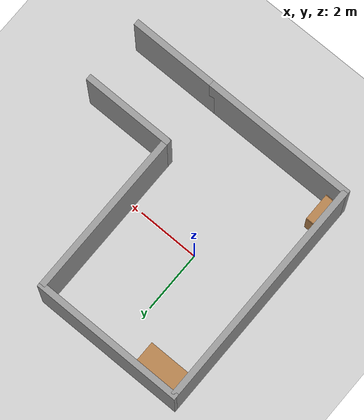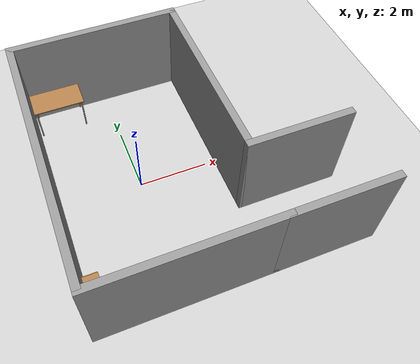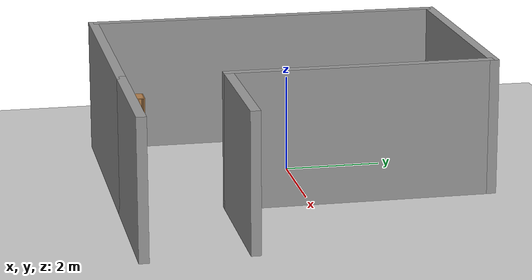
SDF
<sdf version="1.6">
 <world name="default">
  <light name="sun" type="directional">
   <pose>0 0 15 0 -0 0</pose>
   <diffuse>0.8 0.8 0.8 1</diffuse>
   <specular>0.2 0.2 0.2 1</specular>
   <attenuation>
    <range>1000</range>
    <constant>0.9</constant>
    <linear>0.01</linear>
    <quadratic>0.001</quadratic>
   </attenuation>
   <direction>-0.5 0.1 -0.9</direction>
  </light>
  <model name="ground_plane">
   <static>1</static>
   <link name="link">
    <collision name="collision">
     <geometry><plane><normal>0 0 1</normal><size>100 100</size></plane></geometry>
     <surface><friction><ode><mu>100</mu><mu2>50</mu2></ode></friction></surface>
    </collision>
    <visual name="visual">
     <transparency>1</transparency>
     <cast_shadows>0</cast_shadows>
     <geometry><plane><normal>0 0 1</normal><size>100 100</size></plane></geometry>
     <material>
      <script><uri>file://media/materials/scripts/gazebo.material</uri><name>Gazebo/Grey</name></script>
     </material>
    </visual>
   </link>
  </model>
  <gravity>0 0 -9.8</gravity>
  <magnetic_field>6e-06 2.3e-05 -4.2e-05</magnetic_field>
  <atmosphere type="adiabatic"/>
  <physics name="default_physics" default="0" type="ode">
   <max_step_size>0.001</max_step_size>
   <real_time_factor>1</real_time_factor>
   <real_time_update_rate>1000</real_time_update_rate>
  </physics>
  <scene><ambient>0.4 0.4 0.4 1</ambient><background>0.7 0.7 0.7 1</background><shadows>1</shadows></scene>
  <spherical_coordinates>
   <surface_model>EARTH_WGS84</surface_model>
   <latitude_deg>0</latitude_deg>
   <longitude_deg>0</longitude_deg>
   <elevation>0</elevation>
   <heading_deg>0</heading_deg>
  </spherical_coordinates>
  <model name="grey_wall_5">
   <link name="link">
    <pose>0 0 1.4 0 -0 0</pose>
    <inertial>
     <mass>1</mass>
     <inertia><ixx>1</ixx><ixy>0</ixy><ixz>0</ixz><iyy>1</iyy><iyz>0</iyz><izz>1</izz></inertia>
    </inertial>
    <visual name="visual">
     <cast_shadows>0</cast_shadows>
     <geometry><box><size>5 0.2 2.8</size></box></geometry>
     <material>
      <script>
       <uri>model://grey_wall/materials/scripts</uri>
       <uri>model://grey_wall/materials/textures</uri>
       <name>vrc/grey_wall</name>
      </script>
      <shader type="pixel"><normal_map>__default__</normal_map></shader>
      <ambient>1 1 1 1</ambient>
      <diffuse>1 1 1 1</diffuse>
      <specular>0 0 0 1</specular>
      <emissive>0 0 0 1</emissive>
     </material>
    </visual>
    <collision name="collision">
     <geometry><box><size>5 0.2 2.8</size></box></geometry>
     <surface>
      <friction>
       <ode><mu>1</mu><mu2>1</mu2><fdir1>0 0 0</fdir1><slip1>0</slip1><slip2>0</slip2></ode>
       <torsional>
        <coefficient>1</coefficient>
        <patch_radius>0</patch_radius>
        <surface_radius>0</surface_radius>
        <use_patch_radius>1</use_patch_radius>
        <ode><slip>0</slip></ode>
       </torsional>
      </friction>
      <bounce><restitution_coefficient>0</restitution_coefficient><threshold>1e+06</threshold></bounce>
      <contact>
       <collide_without_contact>0</collide_without_contact>
       <collide_without_contact_bitmask>1</collide_without_contact_bitmask>
       <collide_bitmask>1</collide_bitmask>
       <ode>
        <soft_cfm>0</soft_cfm>
        <soft_erp>0.2</soft_erp>
        <kp>1e+13</kp>
        <kd>1</kd>
        <max_vel>0.01</max_vel>
        <min_depth>0</min_depth>
       </ode>
       <bullet>
        <split_impulse>1</split_impulse>
        <split_impulse_penetration_threshold>-0.01</split_impulse_penetration_threshold>
        <soft_cfm>0</soft_cfm>
        <soft_erp>0.2</soft_erp>
        <kp>1e+13</kp>
        <kd>1</kd>
       </bullet>
      </contact>
     </surface>
    </collision>
   </link>
   <static>1</static>
   <pose>0 3.75 0 0 -0 0</pose>
  </model>
  <model name="grey_wall_5_clone">
   <link name="link">
    <pose>0 0 1.4 0 -0 0</pose>
    <inertial>
     <mass>1</mass>
     <inertia><ixx>1</ixx><ixy>0</ixy><ixz>0</ixz><iyy>1</iyy><iyz>0</iyz><izz>1</izz></inertia>
    </inertial>
    <visual name="visual">
     <cast_shadows>0</cast_shadows>
     <geometry><box><size>5 0.2 2.8</size></box></geometry>
     <material>
      <script>
       <uri>model://grey_wall/materials/scripts</uri>
       <uri>model://grey_wall/materials/textures</uri>
       <name>vrc/grey_wall</name>
      </script>
      <shader type="pixel"><normal_map>__default__</normal_map></shader>
      <ambient>1 1 1 1</ambient>
      <diffuse>1 1 1 1</diffuse>
      <specular>0 0 0 1</specular>
      <emissive>0 0 0 1</emissive>
     </material>
    </visual>
    <collision name="collision">
     <geometry><box><size>5 0.2 2.8</size></box></geometry>
     <surface>
      <friction>
       <ode><mu>1</mu><mu2>1</mu2><fdir1>0 0 0</fdir1><slip1>0</slip1><slip2>0</slip2></ode>
       <torsional>
        <coefficient>1</coefficient>
        <patch_radius>0</patch_radius>
        <surface_radius>0</surface_radius>
        <use_patch_radius>1</use_patch_radius>
        <ode><slip>0</slip></ode>
       </torsional>
      </friction>
      <bounce><restitution_coefficient>0</restitution_coefficient><threshold>1e+06</threshold></bounce>
      <contact>
       <collide_without_contact>0</collide_without_contact>
       <collide_without_contact_bitmask>1</collide_without_contact_bitmask>
       <collide_bitmask>1</collide_bitmask>
       <ode>
        <soft_cfm>0</soft_cfm>
        <soft_erp>0.2</soft_erp>
        <kp>1e+13</kp>
        <kd>1</kd>
        <max_vel>0.01</max_vel>
        <min_depth>0</min_depth>
       </ode>
       <bullet>
        <split_impulse>1</split_impulse>
        <split_impulse_penetration_threshold>-0.01</split_impulse_penetration_threshold>
        <soft_cfm>0</soft_cfm>
        <soft_erp>0.2</soft_erp>
        <kp>1e+13</kp>
        <kd>1</kd>
       </bullet>
      </contact>
     </surface>
    </collision>
   </link>
   <static>1</static>
   <pose>0 -3.75 0 0 -0 0</pose>
  </model>
  <model name="grey_wall">
   <static>1</static>
   <link name="link">
    <pose>0 0 1.4 0 -0 0</pose>
    <collision name="collision"><geometry><box><size>7.5 0.2 2.8</size></box></geometry></collision>
    <visual name="visual">
     <cast_shadows>0</cast_shadows>
     <geometry><box><size>7.5 0.2 2.8</size></box></geometry>
     <material>
      <script>
       <uri>model://grey_wall/materials/scripts</uri>
       <uri>model://grey_wall/materials/textures</uri>
       <name>vrc/grey_wall</name>
      </script>
     </material>
    </visual>
   </link>
   <pose>-2.4 0 0 0 -0 1.5708</pose>
  </model>
  <model name="grey_wall_5-5">
   <link name="link">
    <pose>0 0 1.4 0 -0 0</pose>
    <inertial>
     <mass>1</mass>
     <inertia><ixx>1</ixx><ixy>0</ixy><ixz>0</ixz><iyy>1</iyy><iyz>0</iyz><izz>1</izz></inertia>
    </inertial>
    <visual name="visual">
     <cast_shadows>0</cast_shadows>
     <geometry><box><size>5.5 0.2 2.8</size></box></geometry>
     <material>
      <script>
       <uri>model://grey_wall/materials/scripts</uri>
       <uri>model://grey_wall/materials/textures</uri>
       <name>vrc/grey_wall</name>
      </script>
      <shader type="pixel"><normal_map>__default__</normal_map></shader>
      <ambient>1 1 1 1</ambient>
      <diffuse>1 1 1 1</diffuse>
      <specular>0 0 0 1</specular>
      <emissive>0 0 0 1</emissive>
     </material>
    </visual>
    <collision name="collision">
     <geometry><box><size>5.5 0.2 2.8</size></box></geometry>
     <surface>
      <friction>
       <ode><mu>1</mu><mu2>1</mu2><fdir1>0 0 0</fdir1><slip1>0</slip1><slip2>0</slip2></ode>
       <torsional>
        <coefficient>1</coefficient>
        <patch_radius>0</patch_radius>
        <surface_radius>0</surface_radius>
        <use_patch_radius>1</use_patch_radius>
        <ode><slip>0</slip></ode>
       </torsional>
      </friction>
      <bounce><restitution_coefficient>0</restitution_coefficient><threshold>1e+06</threshold></bounce>
      <contact>
       <collide_without_contact>0</collide_without_contact>
       <collide_without_contact_bitmask>1</collide_without_contact_bitmask>
       <collide_bitmask>1</collide_bitmask>
       <ode>
        <soft_cfm>0</soft_cfm>
        <soft_erp>0.2</soft_erp>
        <kp>1e+13</kp>
        <kd>1</kd>
        <max_vel>0.01</max_vel>
        <min_depth>0</min_depth>
       </ode>
       <bullet>
        <split_impulse>1</split_impulse>
        <split_impulse_penetration_threshold>-0.01</split_impulse_penetration_threshold>
        <soft_cfm>0</soft_cfm>
        <soft_erp>0.2</soft_erp>
        <kp>1e+13</kp>
        <kd>1</kd>
       </bullet>
      </contact>
     </surface>
    </collision>
   </link>
   <static>1</static>
   <pose>2.4 1 0 0 -0 1.5708</pose>
  </model>
  <model name="grey_wall_3m">
   <link name="link">
    <pose>0 0 1.4 0 -0 0</pose>
    <inertial>
     <mass>1</mass>
     <inertia><ixx>1</ixx><ixy>0</ixy><ixz>0</ixz><iyy>1</iyy><iyz>0</iyz><izz>1</izz></inertia>
    </inertial>
    <visual name="visual">
     <cast_shadows>0</cast_shadows>
     <geometry><box><size>3 0.2 2.8</size></box></geometry>
     <material>
      <script>
       <uri>model://grey_wall/materials/scripts</uri>
       <uri>model://grey_wall/materials/textures</uri>
       <name>vrc/grey_wall</name>
      </script>
      <shader type="pixel"><normal_map>__default__</normal_map></shader>
      <ambient>1 1 1 1</ambient>
      <diffuse>1 1 1 1</diffuse>
      <specular>0 0 0 1</specular>
      <emissive>0 0 0 1</emissive>
     </material>
    </visual>
    <collision name="collision">
     <geometry><box><size>3 0.2 2.8</size></box></geometry>
     <surface>
      <friction>
       <ode><mu>1</mu><mu2>1</mu2><fdir1>0 0 0</fdir1><slip1>0</slip1><slip2>0</slip2></ode>
       <torsional>
        <coefficient>1</coefficient>
        <patch_radius>0</patch_radius>
        <surface_radius>0</surface_radius>
        <use_patch_radius>1</use_patch_radius>
        <ode><slip>0</slip></ode>
       </torsional>
      </friction>
      <bounce><restitution_coefficient>0</restitution_coefficient><threshold>1e+06</threshold></bounce>
      <contact>
       <collide_without_contact>0</collide_without_contact>
       <collide_without_contact_bitmask>1</collide_without_contact_bitmask>
       <collide_bitmask>1</collide_bitmask>
       <ode>
        <soft_cfm>0</soft_cfm>
        <soft_erp>0.2</soft_erp>
        <kp>1e+13</kp>
        <kd>1</kd>
        <max_vel>0.01</max_vel>
        <min_depth>0</min_depth>
       </ode>
       <bullet>
        <split_impulse>1</split_impulse>
        <split_impulse_penetration_threshold>-0.01</split_impulse_penetration_threshold>
        <soft_cfm>0</soft_cfm>
        <soft_erp>0.2</soft_erp>
        <kp>1e+13</kp>
        <kd>1</kd>
       </bullet>
      </contact>
     </surface>
    </collision>
   </link>
   <static>1</static>
   <pose>3.8 -3.75 0 0 -0 0</pose>
  </model>
  <model name="grey_wall_3m_clone">
   <link name="link">
    <pose>0 0 1.4 0 -0 0</pose>
    <inertial>
     <mass>1</mass>
     <inertia><ixx>1</ixx><ixy>0</ixy><ixz>0</ixz><iyy>1</iyy><iyz>0</iyz><izz>1</izz></inertia>
    </inertial>
    <visual name="visual">
     <cast_shadows>0</cast_shadows>
     <geometry><box><size>3 0.2 2.8</size></box></geometry>
     <material>
      <script>
       <uri>model://grey_wall/materials/scripts</uri>
       <uri>model://grey_wall/materials/textures</uri>
       <name>vrc/grey_wall</name>
      </script>
      <shader type="pixel"><normal_map>__default__</normal_map></shader>
      <ambient>1 1 1 1</ambient>
      <diffuse>1 1 1 1</diffuse>
      <specular>0 0 0 1</specular>
      <emissive>0 0 0 1</emissive>
     </material>
    </visual>
    <collision name="collision">
     <geometry><box><size>3 0.2 2.8</size></box></geometry>
     <surface>
      <friction>
       <ode><mu>1</mu><mu2>1</mu2><fdir1>0 0 0</fdir1><slip1>0</slip1><slip2>0</slip2></ode>
       <torsional>
        <coefficient>1</coefficient>
        <patch_radius>0</patch_radius>
        <surface_radius>0</surface_radius>
        <use_patch_radius>1</use_patch_radius>
        <ode><slip>0</slip></ode>
       </torsional>
      </friction>
      <bounce><restitution_coefficient>0</restitution_coefficient><threshold>1e+06</threshold></bounce>
      <contact>
       <collide_without_contact>0</collide_without_contact>
       <collide_without_contact_bitmask>1</collide_without_contact_bitmask>
       <collide_bitmask>1</collide_bitmask>
       <ode>
        <soft_cfm>0</soft_cfm>
        <soft_erp>0.2</soft_erp>
        <kp>1e+13</kp>
        <kd>1</kd>
        <max_vel>0.01</max_vel>
        <min_depth>0</min_depth>
       </ode>
       <bullet>
        <split_impulse>1</split_impulse>
        <split_impulse_penetration_threshold>-0.01</split_impulse_penetration_threshold>
        <soft_cfm>0</soft_cfm>
        <soft_erp>0.2</soft_erp>
        <kp>1e+13</kp>
        <kd>1</kd>
       </bullet>
      </contact>
     </surface>
    </collision>
   </link>
   <static>1</static>
   <pose>3.8 -1.65 0 0 -0 0</pose>
  </model>
  <model name="table">
   <static>1</static>
   <link name="link">
    <collision name="surface">
     <pose>0 0 1 0 -0 0</pose>
     <geometry><box><size>1.5 0.8 0.03</size></box></geometry>
     <surface><friction><ode><mu>0.6</mu><mu2>0.6</mu2></ode></friction></surface>
    </collision>
    <visual name="visual1">
     <pose>0 0 1 0 -0 0</pose>
     <geometry><box><size>1.5 0.8 0.03</size></box></geometry>
     <material>
      <script><uri>file://media/materials/scripts/gazebo.material</uri><name>Gazebo/Wood</name></script>
     </material>
    </visual>
    <collision name="front_left_leg">
     <pose>0.68 0.38 0.5 0 -0 0</pose>
     <geometry><cylinder><radius>0.02</radius><length>1</length></cylinder></geometry>
    </collision>
    <visual name="front_left_leg">
     <pose>0.68 0.38 0.5 0 -0 0</pose>
     <geometry><cylinder><radius>0.02</radius><length>1</length></cylinder></geometry>
     <material>
      <script><uri>file://media/materials/scripts/gazebo.material</uri><name>Gazebo/Grey</name></script>
     </material>
    </visual>
    <collision name="front_right_leg">
     <pose>0.68 -0.38 0.5 0 -0 0</pose>
     <geometry><cylinder><radius>0.02</radius><length>1</length></cylinder></geometry>
    </collision>
    <visual name="front_right_leg">
     <pose>0.68 -0.38 0.5 0 -0 0</pose>
     <geometry><cylinder><radius>0.02</radius><length>1</length></cylinder></geometry>
     <material>
      <script><uri>file://media/materials/scripts/gazebo.material</uri><name>Gazebo/Grey</name></script>
     </material>
    </visual>
    <collision name="back_right_leg">
     <pose>-0.68 -0.38 0.5 0 -0 0</pose>
     <geometry><cylinder><radius>0.02</radius><length>1</length></cylinder></geometry>
    </collision>
    <visual name="back_right_leg">
     <pose>-0.68 -0.38 0.5 0 -0 0</pose>
     <geometry><cylinder><radius>0.02</radius><length>1</length></cylinder></geometry>
     <material>
      <script><uri>file://media/materials/scripts/gazebo.material</uri><name>Gazebo/Grey</name></script>
     </material>
    </visual>
    <collision name="back_left_leg">
     <pose>-0.68 0.38 0.5 0 -0 0</pose>
     <geometry><cylinder><radius>0.02</radius><length>1</length></cylinder></geometry>
    </collision>
    <visual name="back_left_leg">
     <pose>-0.68 0.38 0.5 0 -0 0</pose>
     <geometry><cylinder><radius>0.02</radius><length>1</length></cylinder></geometry>
     <material>
      <script><uri>file://media/materials/scripts/gazebo.material</uri><name>Gazebo/Grey</name></script>
     </material>
    </visual>
   </link>
   <pose>-1.54366 3.23298 0 0 -0 0</pose>
  </model>
  <model name="bookshelf">
   <static>1</static>
   <link name="link">
    <inertial><mass>1</mass></inertial>
    <collision name="back">
     <pose>0 0.005 0.6 0 -0 0</pose>
     <geometry><box><size>0.9 0.01 1.2</size></box></geometry>
    </collision>
    <visual name="visual1">
     <pose>0 0.005 0.6 0 -0 0</pose>
     <geometry><box><size>0.9 0.01 1.2</size></box></geometry>
     <material>
      <script><uri>file://media/materials/scripts/gazebo.material</uri><name>Gazebo/Wood</name></script>
     </material>
    </visual>
    <collision name="left_side">
     <pose>0.45 -0.195 0.6 0 -0 0</pose>
     <geometry><box><size>0.02 0.4 1.2</size></box></geometry>
    </collision>
    <visual name="visual2">
     <pose>0.45 -0.195 0.6 0 -0 0</pose>
     <geometry><box><size>0.02 0.4 1.2</size></box></geometry>
     <material>
      <script><uri>file://media/materials/scripts/gazebo.material</uri><name>Gazebo/Wood</name></script>
     </material>
    </visual>
    <collision name="right_side">
     <pose>-0.45 -0.195 0.6 0 -0 0</pose>
     <geometry><box><size>0.02 0.4 1.2</size></box></geometry>
    </collision>
    <visual name="visual3">
     <pose>-0.45 -0.195 0.6 0 -0 0</pose>
     <geometry><box><size>0.02 0.4 1.2</size></box></geometry>
     <material>
      <script><uri>file://media/materials/scripts/gazebo.material</uri><name>Gazebo/Wood</name></script>
     </material>
    </visual>
    <collision name="bottom">
     <pose>0 -0.195 0.03 0 -0 0</pose>
     <geometry><box><size>0.88 0.4 0.06</size></box></geometry>
    </collision>
    <visual name="visual4">
     <pose>0 -0.195 0.03 0 -0 0</pose>
     <geometry><box><size>0.88 0.4 0.06</size></box></geometry>
     <material>
      <script><uri>file://media/materials/scripts/gazebo.material</uri><name>Gazebo/Wood</name></script>
     </material>
    </visual>
    <collision name="top">
     <pose>0 -0.195 1.19 0 -0 0</pose>
     <geometry><box><size>0.88 0.4 0.02</size></box></geometry>
    </collision>
    <visual name="visual5">
     <pose>0 -0.195 1.19 0 -0 0</pose>
     <geometry><box><size>0.88 0.4 0.02</size></box></geometry>
     <material>
      <script><uri>file://media/materials/scripts/gazebo.material</uri><name>Gazebo/Wood</name></script>
     </material>
    </visual>
    <collision name="low_shelf">
     <pose>0 -0.195 0.43 0 -0 0</pose>
     <geometry><box><size>0.88 0.4 0.02</size></box></geometry>
    </collision>
    <visual name="visual6">
     <pose>0 -0.195 0.43 0 -0 0</pose>
     <geometry><box><size>0.88 0.4 0.02</size></box></geometry>
     <material>
      <script><uri>file://media/materials/scripts/gazebo.material</uri><name>Gazebo/Wood</name></script>
     </material>
    </visual>
    <collision name="high_shelf">
     <pose>0 -0.195 0.8 0 -0 0</pose>
     <geometry><box><size>0.88 0.4 0.02</size></box></geometry>
    </collision>
    <visual name="visual7">
     <pose>0 -0.195 0.8 0 -0 0</pose>
     <geometry><box><size>0.88 0.4 0.02</size></box></geometry>
     <material>
      <script><uri>file://media/materials/scripts/gazebo.material</uri><name>Gazebo/Wood</name></script>
     </material>
    </visual>
   </link>
   <pose>-2.29506 -3.18935 0 0 -0 1.5708</pose>
  </model>
 </world>
</sdf>
